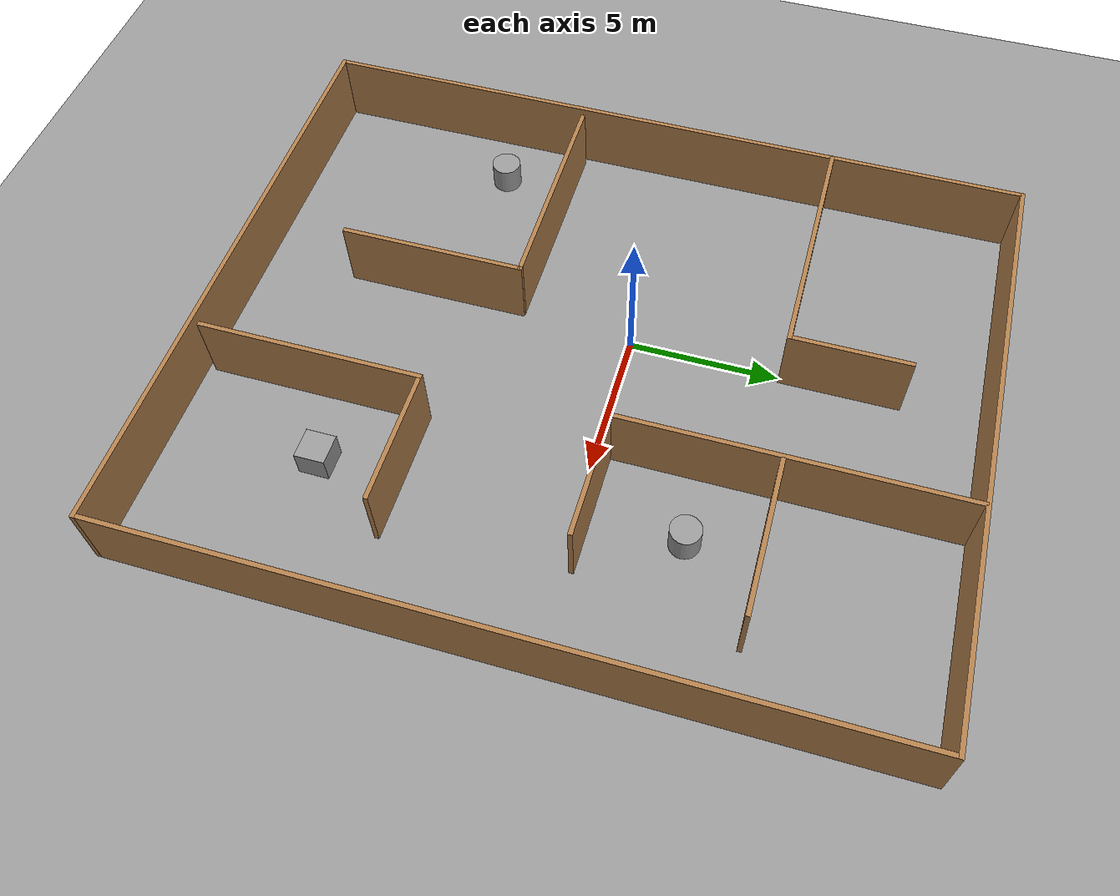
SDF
<sdf version="1.6">
 <world name="default">
  <light name="sun" type="directional">
   <pose>0 0 10 0 -0 0</pose>
   <diffuse>0.8 0.8 0.8 1</diffuse>
   <specular>0.2 0.2 0.2 1</specular>
   <attenuation>
    <range>1000</range>
    <constant>0.9</constant>
    <linear>0.01</linear>
    <quadratic>0.001</quadratic>
   </attenuation>
   <direction>-0.5 0.1 -0.9</direction>
  </light>
  <model name="ground_plane">
   <static>1</static>
   <link name="link">
    <collision name="collision">
     <geometry><plane><normal>0 0 1</normal><size>100 100</size></plane></geometry>
     <surface>
      <contact><collide_bitmask>65535</collide_bitmask></contact>
      <friction><ode><mu>100</mu><mu2>50</mu2></ode></friction>
     </surface>
    </collision>
    <visual name="visual">
     <cast_shadows>0</cast_shadows>
     <geometry><plane><normal>0 0 1</normal><size>100 100</size></plane></geometry>
     <material>
      <script><uri>file://media/materials/scripts/gazebo.material</uri><name>Gazebo/Grey</name></script>
     </material>
    </visual>
   </link>
  </model>
  <gravity>0 0 -9.8</gravity>
  <magnetic_field>6e-06 2.3e-05 -4.2e-05</magnetic_field>
  <atmosphere type="adiabatic"/>
  <physics name="default_physics" default="0" type="ode">
   <max_step_size>0.001</max_step_size>
   <real_time_factor>1</real_time_factor>
   <real_time_update_rate>1000</real_time_update_rate>
  </physics>
  <scene><ambient>0.4 0.4 0.4 1</ambient><background>0.7 0.7 0.7 1</background><shadows>1</shadows></scene>
  <audio><device>default</device></audio>
  <spherical_coordinates>
   <surface_model>EARTH_WGS84</surface_model>
   <latitude_deg>0</latitude_deg>
   <longitude_deg>0</longitude_deg>
   <elevation>0</elevation>
   <heading_deg>0</heading_deg>
  </spherical_coordinates>
  <model name="test">
   <pose>1.92019 -0.7893 0 0 -0 0</pose>
   <link name="Wall_10">
    <collision name="Wall_10_Collision">
     <geometry><box><size>20 0.15 2.5</size></box></geometry>
     <pose>0 0 1.25 0 -0 0</pose>
    </collision>
    <visual name="Wall_10_Visual">
     <pose>0 0 1.25 0 -0 0</pose>
     <geometry><box><size>20 0.15 2.5</size></box></geometry>
     <material>
      <script><uri>file://media/materials/scripts/gazebo.material</uri><name>Gazebo/Wood</name></script>
      <ambient>1 1 1 1</ambient>
     </material>
     <meta><layer>0</layer></meta>
    </visual>
    <pose>0 -12.425 0 0 -0 0</pose>
   </link>
   <link name="Wall_15">
    <collision name="Wall_15_Collision">
     <geometry><box><size>11.25 0.15 2.5</size></box></geometry>
     <pose>0 0 1.25 0 -0 0</pose>
    </collision>
    <visual name="Wall_15_Visual">
     <pose>0 0 1.25 0 -0 0</pose>
     <geometry><box><size>11.25 0.15 2.5</size></box></geometry>
     <material>
      <script><uri>file://media/materials/scripts/gazebo.material</uri><name>Gazebo/Wood</name></script>
      <ambient>1 1 1 1</ambient>
     </material>
     <meta><layer>0</layer></meta>
    </visual>
    <pose>2.50732 6.80392 0 0 -0 -1.5708</pose>
   </link>
   <link name="Wall_16">
    <collision name="Wall_16_Collision">
     <geometry><box><size>4.25 0.15 2.5</size></box></geometry>
     <pose>0 0 1.25 0 -0 0</pose>
    </collision>
    <visual name="Wall_16_Visual">
     <pose>0 0 1.25 0 -0 0</pose>
     <geometry><box><size>4.25 0.15 2.5</size></box></geometry>
     <material>
      <script><uri>file://media/materials/scripts/gazebo.material</uri><name>Gazebo/Wood</name></script>
      <ambient>1 1 1 1</ambient>
     </material>
     <meta><layer>0</layer></meta>
    </visual>
    <pose>4.55732 1.25392 0 0 -0 0</pose>
   </link>
   <link name="Wall_19">
    <collision name="Wall_19_Collision">
     <geometry><box><size>7.5 0.15 2.5</size></box></geometry>
     <pose>0 0 1.25 0 -0 0</pose>
    </collision>
    <visual name="Wall_19_Visual">
     <pose>0 0 1.25 0 -0 0</pose>
     <geometry><box><size>7.5 0.15 2.5</size></box></geometry>
     <material>
      <script><uri>file://media/materials/scripts/gazebo.material</uri><name>Gazebo/Wood</name></script>
      <ambient>1 1 1 1</ambient>
     </material>
     <meta><layer>0</layer></meta>
    </visual>
    <pose>2.75006 -8.3658 0 0 -0 1.5708</pose>
   </link>
   <link name="Wall_20">
    <collision name="Wall_20_Collision">
     <geometry><box><size>4.5 0.15 2.5</size></box></geometry>
     <pose>0 0 1.25 0 -0 0</pose>
    </collision>
    <visual name="Wall_20_Visual">
     <pose>0 0 1.25 0 -0 0</pose>
     <geometry><box><size>4.5 0.15 2.5</size></box></geometry>
     <material>
      <script><uri>file://media/materials/scripts/gazebo.material</uri><name>Gazebo/Wood</name></script>
      <ambient>1 1 1 1</ambient>
     </material>
     <meta><layer>0</layer></meta>
    </visual>
    <pose>4.92506 -4.69079 0 0 -0 0</pose>
   </link>
   <link name="Wall_22">
    <collision name="Wall_22_Collision">
     <geometry><box><size>7.5 0.15 2.5</size></box></geometry>
     <pose>0 0 1.25 0 -0 0</pose>
    </collision>
    <visual name="Wall_22_Visual">
     <pose>0 0 1.25 0 -0 0</pose>
     <geometry><box><size>7.5 0.15 2.5</size></box></geometry>
     <material>
      <script><uri>file://media/materials/scripts/gazebo.material</uri><name>Gazebo/Wood</name></script>
      <ambient>1 1 1 1</ambient>
     </material>
     <meta><layer>0</layer></meta>
    </visual>
    <pose>-5.83298 -3.05966 0 0 -0 0</pose>
   </link>
   <link name="Wall_23">
    <collision name="Wall_23_Collision">
     <geometry><box><size>6.25 0.15 2.5</size></box></geometry>
     <pose>0 0 1.25 0 -0 0</pose>
    </collision>
    <visual name="Wall_23_Visual">
     <pose>0 0 1.25 0 -0 0</pose>
     <geometry><box><size>6.25 0.15 2.5</size></box></geometry>
     <material>
      <script><uri>file://media/materials/scripts/gazebo.material</uri><name>Gazebo/Wood</name></script>
      <ambient>1 1 1 1</ambient>
     </material>
     <meta><layer>0</layer></meta>
    </visual>
    <pose>-2.15798 -6.10966 0 0 -0 -1.5708</pose>
   </link>
   <link name="Wall_25">
    <collision name="Wall_25_Collision">
     <geometry><box><size>5.25 0.15 2.5</size></box></geometry>
     <pose>0 0 1.25 0 -0 0</pose>
    </collision>
    <visual name="Wall_25_Visual">
     <pose>0 0 1.25 0 -0 0</pose>
     <geometry><box><size>5.25 0.15 2.5</size></box></geometry>
     <material>
      <script><uri>file://media/materials/scripts/gazebo.material</uri><name>Gazebo/Wood</name></script>
      <ambient>1 1 1 1</ambient>
     </material>
     <meta><layer>0</layer></meta>
    </visual>
    <pose>5.0884 6.52834 0 0 -0 0</pose>
   </link>
   <link name="Wall_27">
    <collision name="Wall_27_Collision">
     <geometry><box><size>8.25 0.15 2.5</size></box></geometry>
     <pose>0 0 1.25 0 -0 0</pose>
    </collision>
    <visual name="Wall_27_Visual">
     <pose>0 0 1.25 0 -0 0</pose>
     <geometry><box><size>8.25 0.15 2.5</size></box></geometry>
     <material>
      <script><uri>file://media/materials/scripts/gazebo.material</uri><name>Gazebo/Wood</name></script>
      <ambient>1 1 1 1</ambient>
     </material>
     <meta><layer>0</layer></meta>
    </visual>
    <pose>-5.86489 5.89513 0 0 -0 0</pose>
   </link>
   <link name="Wall_28">
    <collision name="Wall_28_Collision">
     <geometry><box><size>4 0.15 2.5</size></box></geometry>
     <pose>0 0 1.25 0 -0 0</pose>
    </collision>
    <visual name="Wall_28_Visual">
     <pose>0 0 1.25 0 -0 0</pose>
     <geometry><box><size>4 0.15 2.5</size></box></geometry>
     <material>
      <script><uri>file://media/materials/scripts/gazebo.material</uri><name>Gazebo/Wood</name></script>
      <ambient>1 1 1 1</ambient>
     </material>
     <meta><layer>0</layer></meta>
    </visual>
    <pose>-1.81489 7.82012 0 0 -0 1.5708</pose>
   </link>
   <link name="Wall_3">
    <collision name="Wall_3_Collision">
     <geometry><box><size>25 0.15 2.5</size></box></geometry>
     <pose>0 0 1.25 0 -0 0</pose>
    </collision>
    <visual name="Wall_3_Visual">
     <pose>0 0 1.25 0 -0 0</pose>
     <geometry><box><size>25 0.15 2.5</size></box></geometry>
     <material>
      <script><uri>file://media/materials/scripts/gazebo.material</uri><name>Gazebo/Wood</name></script>
      <ambient>1 1 1 1</ambient>
     </material>
     <meta><layer>0</layer></meta>
    </visual>
    <pose>-9.925 0 0 0 -0 -1.5708</pose>
   </link>
   <link name="Wall_5">
    <collision name="Wall_5_Collision">
     <geometry><box><size>20 0.15 2.5</size></box></geometry>
     <pose>0 0 1.25 0 -0 0</pose>
    </collision>
    <visual name="Wall_5_Visual">
     <pose>0 0 1.25 0 -0 0</pose>
     <geometry><box><size>20 0.15 2.5</size></box></geometry>
     <material>
      <script><uri>file://media/materials/scripts/gazebo.material</uri><name>Gazebo/Wood</name></script>
      <ambient>1 1 1 1</ambient>
     </material>
     <meta><layer>0</layer></meta>
    </visual>
    <pose>0 12.425 0 0 -0 0</pose>
   </link>
   <link name="Wall_7">
    <collision name="Wall_7_Collision">
     <geometry><box><size>25 0.15 2.5</size></box></geometry>
     <pose>0 0 1.25 0 -0 0</pose>
    </collision>
    <visual name="Wall_7_Visual">
     <pose>0 0 1.25 0 -0 0</pose>
     <geometry><box><size>25 0.15 2.5</size></box></geometry>
     <material>
      <script><uri>file://media/materials/scripts/gazebo.material</uri><name>Gazebo/Wood</name></script>
      <ambient>1 1 1 1</ambient>
     </material>
     <meta><layer>0</layer></meta>
    </visual>
    <pose>9.925 0 0 0 -0 -1.5708</pose>
   </link>
   <static>1</static>
  </model>
  <model name="unit_box">
   <pose>7.08053 -8.18255 0.500002 -4e-06 0 -3e-06</pose>
   <link name="link">
    <inertial>
     <mass>1</mass>
     <inertia>
      <ixx>0.166667</ixx>
      <ixy>0</ixy>
      <ixz>0</ixz>
      <iyy>0.166667</iyy>
      <iyz>0</iyz>
      <izz>0.166667</izz>
     </inertia>
    </inertial>
    <collision name="collision"><geometry><box><size>1 1 1</size></box></geometry></collision>
    <visual name="visual">
     <geometry><box><size>1 1 1</size></box></geometry>
     <material>
      <script><name>Gazebo/Grey</name><uri>file://media/materials/scripts/gazebo.material</uri></script>
     </material>
    </visual>
   </link>
  </model>
  <model name="unit_cylinder">
   <pose>6.75765 3.45595 0.499997 3e-06 4e-06 -0</pose>
   <link name="link">
    <inertial>
     <mass>1</mass>
     <inertia><ixx>0.145833</ixx><ixy>0</ixy><ixz>0</ixz><iyy>0.145833</iyy><iyz>0</iyz><izz>0.125</izz></inertia>
    </inertial>
    <collision name="collision">
     <geometry><cylinder><radius>0.5</radius><length>1</length></cylinder></geometry>
    </collision>
    <visual name="visual">
     <geometry><cylinder><radius>0.5</radius><length>1</length></cylinder></geometry>
     <material>
      <script><name>Gazebo/Grey</name><uri>file://media/materials/scripts/gazebo.material</uri></script>
     </material>
    </visual>
   </link>
  </model>
  <model name="unit_cylinder_0">
   <pose>-6.01276 -6.29957 0.499993 -3e-06 -4e-06 -0</pose>
   <link name="link">
    <inertial>
     <mass>1</mass>
     <inertia><ixx>0.145833</ixx><ixy>0</ixy><ixz>0</ixz><iyy>0.145833</iyy><iyz>0</iyz><izz>0.125</izz></inertia>
    </inertial>
    <collision name="collision">
     <geometry><cylinder><radius>0.5</radius><length>1</length></cylinder></geometry>
    </collision>
    <visual name="visual">
     <geometry><cylinder><radius>0.5</radius><length>1</length></cylinder></geometry>
     <material>
      <script><name>Gazebo/Grey</name><uri>file://media/materials/scripts/gazebo.material</uri></script>
     </material>
    </visual>
   </link>
  </model>
  <model name="ground_plane_0">
   <static>1</static>
   <link name="link">
    <collision name="collision">
     <geometry><plane><normal>0 0 1</normal><size>100 100</size></plane></geometry>
     <surface>
      <contact><collide_bitmask>65535</collide_bitmask></contact>
      <friction><ode><mu>100</mu><mu2>50</mu2></ode></friction>
     </surface>
    </collision>
    <visual name="visual">
     <cast_shadows>0</cast_shadows>
     <geometry><plane><normal>0 0 1</normal><size>100 100</size></plane></geometry>
     <material>
      <script><uri>file://media/materials/scripts/gazebo.material</uri><name>Gazebo/Grey</name></script>
     </material>
    </visual>
   </link>
   <pose>0.795476 -2.09265 0 0 -0 0</pose>
  </model>
 </world>
</sdf>
